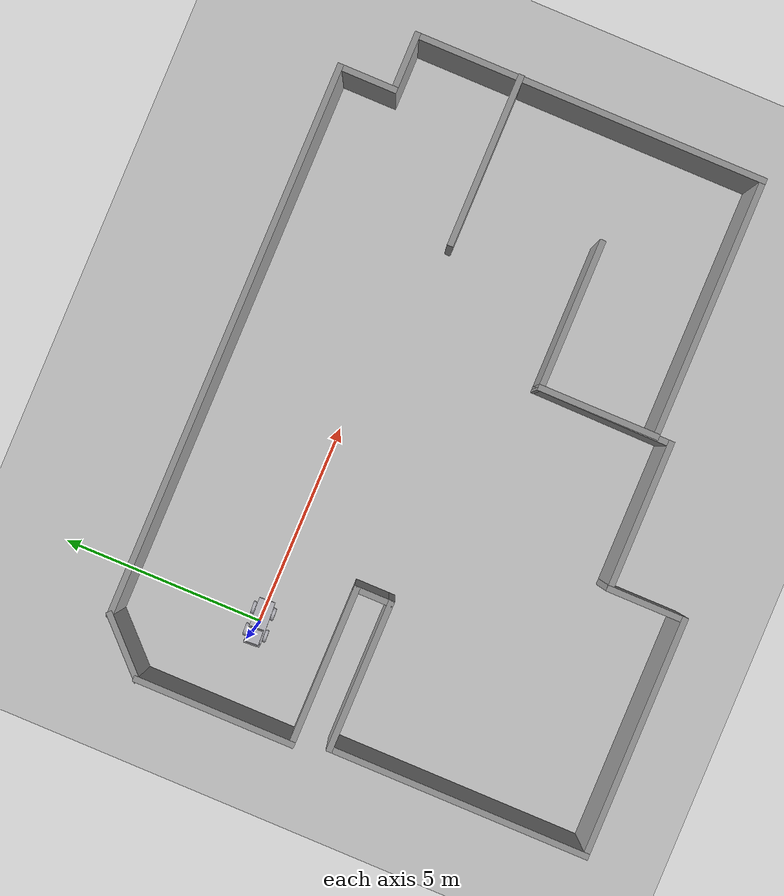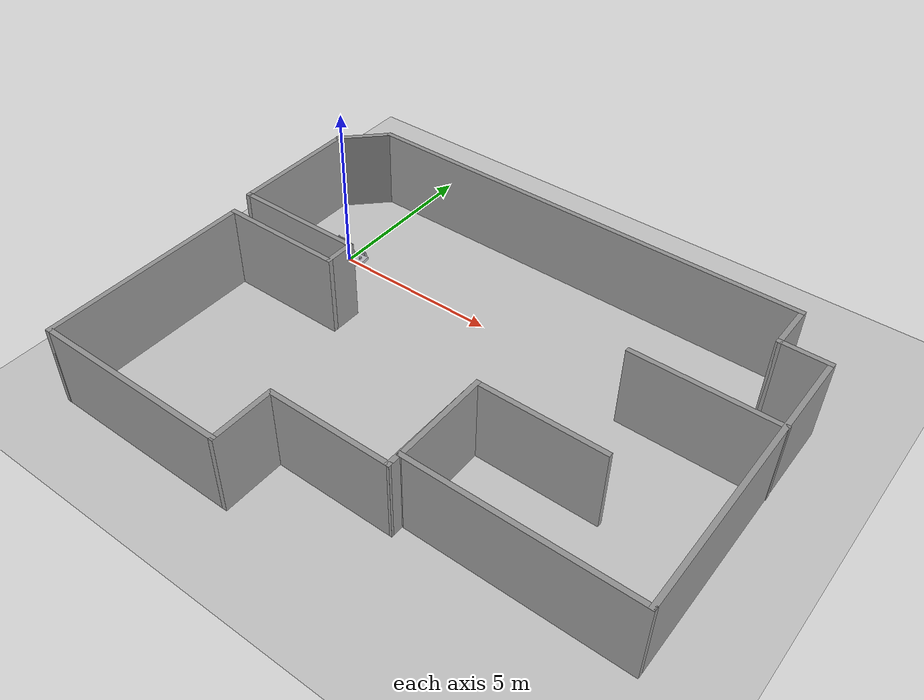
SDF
<sdf version="1.7">
 <world name="default">
  <light name="sun" type="directional">
   <pose>0 0 10 0 -0 0</pose>
   <diffuse>0.8 0.8 0.8 1</diffuse>
   <specular>0.2 0.2 0.2 1</specular>
   <attenuation>
    <range>1000</range>
    <constant>0.9</constant>
    <linear>0.01</linear>
    <quadratic>0.001</quadratic>
   </attenuation>
   <direction>-0.5 0.1 -0.9</direction>
   <spot><inner_angle>0</inner_angle><outer_angle>0</outer_angle><falloff>0</falloff></spot>
  </light>
  <model name="ground_plane">
   <static>1</static>
   <link name="link">
    <collision name="collision">
     <geometry><plane><normal>0 0 1</normal><size>100 100</size></plane></geometry>
     <surface>
      <contact><collide_bitmask>65535</collide_bitmask></contact>
      <friction><ode><mu>100</mu><mu2>50</mu2></ode></friction>
     </surface>
    </collision>
    <visual name="visual">
     <cast_shadows>0</cast_shadows>
     <geometry><plane><normal>0 0 1</normal><size>100 100</size></plane></geometry>
     <material>
      <script><uri>file://media/materials/scripts/gazebo.material</uri><name>Gazebo/Grey</name></script>
     </material>
    </visual>
   </link>
  </model>
  <gravity>0 0 -9.8</gravity>
  <magnetic_field>6e-06 2.3e-05 -4.2e-05</magnetic_field>
  <atmosphere type="adiabatic"/>
  <physics type="ode">
   <max_step_size>0.001</max_step_size>
   <real_time_factor>1</real_time_factor>
   <real_time_update_rate>1000</real_time_update_rate>
  </physics>
  <scene><ambient>0.4 0.4 0.4 1</ambient><background>0.7 0.7 0.7 1</background><shadows>1</shadows></scene>
  <spherical_coordinates>
   <surface_model>EARTH_WGS84</surface_model>
   <latitude_deg>0</latitude_deg>
   <longitude_deg>0</longitude_deg>
   <elevation>0</elevation>
   <heading_deg>0</heading_deg>
  </spherical_coordinates>
  <model name="Sim">
   <link name="base_link">
    <inertial>
     <pose>-0.216834 0.008542 0.267731 0 -0 0</pose>
     <mass>108.314</mass>
     <inertia>
      <ixx>3.47879</ixx>
      <ixy>0.128213</ixy>
      <ixz>1.74582</ixz>
      <iyy>10.7063</iyy>
      <iyz>-0.111075</iyz>
      <izz>10.5024</izz>
     </inertia>
    </inertial>
    <collision name="base_link_collision">
     <geometry>
      <mesh>
       <scale>0.001 0.001 0.001</scale>
       <uri>/home/parallels/Desktop/cyfair_lunabotics/Modules/ROS/catkin_ws/src/rover_sim/meshes/base_link.stl</uri>
      </mesh>
     </geometry>
     <surface><friction><ode><mu>0.2</mu><mu2>0.2</mu2></ode></friction></surface>
    </collision>
    <collision name="base_link_fixed_joint_lump__dump_1_collision_1">
     <geometry>
      <mesh>
       <scale>0.001 0.001 0.001</scale>
       <uri>/home/parallels/Desktop/cyfair_lunabotics/Modules/ROS/catkin_ws/src/rover_sim/meshes/dump_1.stl</uri>
      </mesh>
     </geometry>
     <surface><friction><ode><mu>0.2</mu><mu2>0.2</mu2></ode></friction></surface>
    </collision>
    <collision name="base_link_fixed_joint_lump__lidar_1_collision_2">
     <geometry>
      <mesh>
       <scale>0.001 0.001 0.001</scale>
       <uri>/home/parallels/Desktop/cyfair_lunabotics/Modules/ROS/catkin_ws/src/rover_sim/meshes/lidar_1.stl</uri>
      </mesh>
     </geometry>
     <surface><friction><ode><mu>0.2</mu><mu2>0.2</mu2></ode></friction></surface>
    </collision>
    <visual name="base_link_visual">
     <geometry>
      <mesh>
       <scale>0.001 0.001 0.001</scale>
       <uri>/home/parallels/Desktop/cyfair_lunabotics/Modules/ROS/catkin_ws/src/rover_sim/meshes/base_link.stl</uri>
      </mesh>
     </geometry>
     <material>
      <script><name>Gazebo/Silver</name><uri>file://media/materials/scripts/gazebo.material</uri></script>
     </material>
    </visual>
    <visual name="base_link_fixed_joint_lump__dump_1_visual_1">
     <geometry>
      <mesh>
       <scale>0.001 0.001 0.001</scale>
       <uri>/home/parallels/Desktop/cyfair_lunabotics/Modules/ROS/catkin_ws/src/rover_sim/meshes/dump_1.stl</uri>
      </mesh>
     </geometry>
     <material>
      <script><name>Gazebo/Silver</name><uri>file://media/materials/scripts/gazebo.material</uri></script>
     </material>
    </visual>
    <visual name="base_link_fixed_joint_lump__lidar_1_visual_2">
     <geometry>
      <mesh>
       <scale>0.001 0.001 0.001</scale>
       <uri>/home/parallels/Desktop/cyfair_lunabotics/Modules/ROS/catkin_ws/src/rover_sim/meshes/lidar_1.stl</uri>
      </mesh>
     </geometry>
     <material>
      <script><name>Gazebo/Silver</name><uri>file://media/materials/scripts/gazebo.material</uri></script>
     </material>
    </visual>
    <self_collide>1</self_collide>
    <sensor name="head_hokuyo_sensor" type="ray">
     <visualize>1</visualize>
     <update_rate>40</update_rate>
     <ray>
      <scan>
       <horizontal>
        <samples>720</samples>
        <resolution>1</resolution>
        <min_angle>-1.5708</min_angle>
        <max_angle>6.3</max_angle>
       </horizontal>
       <vertical><samples>1</samples><min_angle>0</min_angle><max_angle>0</max_angle></vertical>
      </scan>
      <range><min>0.1</min><max>10</max><resolution>0.01</resolution></range>
      <noise><type>gaussian</type><mean>0</mean><stddev>0.01</stddev></noise>
     </ray>
     <plugin name="gazebo_ros_head_hokuyo_controller" filename="libgazebo_ros_laser.so">
      <topicName>/scan</topicName>
      <frameName>lidar_1</frameName>
      <robotNamespace>/</robotNamespace>
     </plugin>
     <pose>0.4 0 0.24115 0 -0 0</pose>
    </sensor>
   </link>
   <joint name="Rev13" type="revolute">
    <pose relative_to="base_link">-0.275 0.21 0.1524 0 -0 0</pose>
    <parent>base_link</parent>
    <child>wheel3_1</child>
    <axis>
     <xyz>0 1 0</xyz>
     <limit><lower>-1e+16</lower><upper>1e+16</upper></limit>
     <dynamics><spring_reference>0</spring_reference><spring_stiffness>0</spring_stiffness></dynamics>
    </axis>
   </joint>
   <link name="wheel3_1">
    <pose relative_to="Rev13">0 0 0 0 -0 0</pose>
    <inertial>
     <pose>0 0.0381 0 0 -0 0</pose>
     <mass>5.1708</mass>
     <inertia>
      <ixx>0.032526</ixx>
      <ixy>0</ixy>
      <ixz>0</ixz>
      <iyy>0.060048</iyy>
      <iyz>0</iyz>
      <izz>0.032526</izz>
     </inertia>
    </inertial>
    <collision name="wheel3_1_collision">
     <pose>0.275 -0.21 -0.1524 0 -0 0</pose>
     <geometry>
      <mesh>
       <scale>0.001 0.001 0.001</scale>
       <uri>/home/parallels/Desktop/cyfair_lunabotics/Modules/ROS/catkin_ws/src/rover_sim/meshes/wheel3_1.stl</uri>
      </mesh>
     </geometry>
     <surface><friction><ode><mu>0.2</mu><mu2>0.2</mu2></ode></friction></surface>
    </collision>
    <visual name="wheel3_1_visual">
     <pose>0.275 -0.21 -0.1524 0 -0 0</pose>
     <geometry>
      <mesh>
       <scale>0.001 0.001 0.001</scale>
       <uri>/home/parallels/Desktop/cyfair_lunabotics/Modules/ROS/catkin_ws/src/rover_sim/meshes/wheel3_1.stl</uri>
      </mesh>
     </geometry>
     <material>
      <script><name>Gazebo/Silver</name><uri>file://media/materials/scripts/gazebo.material</uri></script>
     </material>
    </visual>
    <self_collide>1</self_collide>
   </link>
   <joint name="Rev14" type="revolute">
    <pose relative_to="base_link">0.275 0.21 0.1524 0 -0 0</pose>
    <parent>base_link</parent>
    <child>wheel2_1</child>
    <axis>
     <xyz>0 1 0</xyz>
     <limit><lower>-1e+16</lower><upper>1e+16</upper></limit>
     <dynamics><spring_reference>0</spring_reference><spring_stiffness>0</spring_stiffness></dynamics>
    </axis>
   </joint>
   <link name="wheel2_1">
    <pose relative_to="Rev14">0 0 0 0 -0 0</pose>
    <inertial>
     <pose>0 0.0381 0 0 -0 0</pose>
     <mass>5.1708</mass>
     <inertia>
      <ixx>0.032526</ixx>
      <ixy>0</ixy>
      <ixz>0</ixz>
      <iyy>0.060048</iyy>
      <iyz>0</iyz>
      <izz>0.032526</izz>
     </inertia>
    </inertial>
    <collision name="wheel2_1_collision">
     <pose>-0.275 -0.21 -0.1524 0 -0 0</pose>
     <geometry>
      <mesh>
       <scale>0.001 0.001 0.001</scale>
       <uri>/home/parallels/Desktop/cyfair_lunabotics/Modules/ROS/catkin_ws/src/rover_sim/meshes/wheel2_1.stl</uri>
      </mesh>
     </geometry>
     <surface><friction><ode><mu>0.2</mu><mu2>0.2</mu2></ode></friction></surface>
    </collision>
    <visual name="wheel2_1_visual">
     <pose>-0.275 -0.21 -0.1524 0 -0 0</pose>
     <geometry>
      <mesh>
       <scale>0.001 0.001 0.001</scale>
       <uri>/home/parallels/Desktop/cyfair_lunabotics/Modules/ROS/catkin_ws/src/rover_sim/meshes/wheel2_1.stl</uri>
      </mesh>
     </geometry>
     <material>
      <script><name>Gazebo/Silver</name><uri>file://media/materials/scripts/gazebo.material</uri></script>
     </material>
    </visual>
    <self_collide>1</self_collide>
   </link>
   <joint name="Rev15" type="revolute">
    <pose relative_to="base_link">0.275 -0.21 0.1524 0 -0 0</pose>
    <parent>base_link</parent>
    <child>wheel1_1</child>
    <axis>
     <xyz>0 -1 0</xyz>
     <limit><lower>-1e+16</lower><upper>1e+16</upper></limit>
     <dynamics><spring_reference>0</spring_reference><spring_stiffness>0</spring_stiffness></dynamics>
    </axis>
   </joint>
   <link name="wheel1_1">
    <pose relative_to="Rev15">0 0 0 0 -0 0</pose>
    <inertial>
     <pose>-0 -0.0381 0 0 -0 0</pose>
     <mass>5.1708</mass>
     <inertia>
      <ixx>0.032526</ixx>
      <ixy>0</ixy>
      <ixz>0</ixz>
      <iyy>0.060048</iyy>
      <iyz>0</iyz>
      <izz>0.032526</izz>
     </inertia>
    </inertial>
    <collision name="wheel1_1_collision">
     <pose>-0.275 0.21 -0.1524 0 -0 0</pose>
     <geometry>
      <mesh>
       <scale>0.001 0.001 0.001</scale>
       <uri>/home/parallels/Desktop/cyfair_lunabotics/Modules/ROS/catkin_ws/src/rover_sim/meshes/wheel1_1.stl</uri>
      </mesh>
     </geometry>
     <surface><friction><ode><mu>0.2</mu><mu2>0.2</mu2></ode></friction></surface>
    </collision>
    <visual name="wheel1_1_visual">
     <pose>-0.275 0.21 -0.1524 0 -0 0</pose>
     <geometry>
      <mesh>
       <scale>0.001 0.001 0.001</scale>
       <uri>/home/parallels/Desktop/cyfair_lunabotics/Modules/ROS/catkin_ws/src/rover_sim/meshes/wheel1_1.stl</uri>
      </mesh>
     </geometry>
     <material>
      <script><name>Gazebo/Silver</name><uri>file://media/materials/scripts/gazebo.material</uri></script>
     </material>
    </visual>
    <self_collide>1</self_collide>
   </link>
   <joint name="Rev16" type="revolute">
    <pose relative_to="base_link">-0.275 -0.21 0.1524 0 -0 0</pose>
    <parent>base_link</parent>
    <child>wheel4_1</child>
    <axis>
     <xyz>0 1 0</xyz>
     <limit><lower>-1e+16</lower><upper>1e+16</upper></limit>
     <dynamics><spring_reference>0</spring_reference><spring_stiffness>0</spring_stiffness></dynamics>
    </axis>
   </joint>
   <link name="wheel4_1">
    <pose relative_to="Rev16">0 0 0 0 -0 0</pose>
    <inertial>
     <pose>-0 -0.0381 0 0 -0 0</pose>
     <mass>5.1708</mass>
     <inertia>
      <ixx>0.032526</ixx>
      <ixy>0</ixy>
      <ixz>0</ixz>
      <iyy>0.060048</iyy>
      <iyz>0</iyz>
      <izz>0.032526</izz>
     </inertia>
    </inertial>
    <collision name="wheel4_1_collision">
     <pose>0.275 0.21 -0.1524 0 -0 0</pose>
     <geometry>
      <mesh>
       <scale>0.001 0.001 0.001</scale>
       <uri>/home/parallels/Desktop/cyfair_lunabotics/Modules/ROS/catkin_ws/src/rover_sim/meshes/wheel4_1.stl</uri>
      </mesh>
     </geometry>
     <surface><friction><ode><mu>0.2</mu><mu2>0.2</mu2></ode></friction></surface>
    </collision>
    <visual name="wheel4_1_visual">
     <pose>0.275 0.21 -0.1524 0 -0 0</pose>
     <geometry>
      <mesh>
       <scale>0.001 0.001 0.001</scale>
       <uri>/home/parallels/Desktop/cyfair_lunabotics/Modules/ROS/catkin_ws/src/rover_sim/meshes/wheel4_1.stl</uri>
      </mesh>
     </geometry>
     <material>
      <script><name>Gazebo/Silver</name><uri>file://media/materials/scripts/gazebo.material</uri></script>
     </material>
    </visual>
    <self_collide>1</self_collide>
   </link>
   <plugin name="control" filename="libgazebo_ros_control.so"><robotNamespace>/</robotNamespace></plugin>
   <static>0</static>
   <plugin name="skid_steer_drive" filename="libgazebo_ros_skid_steer_drive.so">
    <updateRate>500</updateRate>
    <leftFrontJoint>Rev14</leftFrontJoint>
    <rightFrontJoint>Rev15</rightFrontJoint>
    <leftRearJoint>Rev13</leftRearJoint>
    <rightRearJoint>Rev16</rightRearJoint>
    <wheelSeparation>1.25</wheelSeparation>
    <wheelDiameter>0.3</wheelDiameter>
    <torque>20</torque>
    <commandTopic>cmd_vel</commandTopic>
    <odometryTopic>odom_demo</odometryTopic>
    <odometryFrame>odom_demo</odometryFrame>
    <broadcastTF>1</broadcastTF>
    <robotNamespace>/</robotNamespace>
   </plugin>
   <pose>0.00407 -0.005472 -5.3e-05 -6.7e-05 0.000118 0.053942</pose>
  </model>
  <model name="TestWorld">
   <pose>5.94302 -2.90878 0 0 -0 0</pose>
   <link name="Wall_0">
    <collision name="Wall_0_Collision">
     <geometry><box><size>4 0.15 2.5</size></box></geometry>
     <pose>0 0 1.25 0 -0 0</pose>
    </collision>
    <visual name="Wall_0_Visual">
     <pose>0 0 1.25 0 -0 0</pose>
     <geometry><box><size>4 0.15 2.5</size></box></geometry>
     <material>
      <script><uri>file://media/materials/scripts/gazebo.material</uri><name>Gazebo/Grey</name></script>
      <ambient>1 1 1 1</ambient>
     </material>
     <meta><layer>0</layer></meta>
    </visual>
    <pose>-8.03302 3.01878 0 0 -0 -1.5708</pose>
   </link>
   <link name="Wall_10">
    <collision name="Wall_10_Collision">
     <geometry><box><size>3 0.15 2.5</size></box></geometry>
     <pose>0 0 1.25 0 -0 0</pose>
    </collision>
    <visual name="Wall_10_Visual">
     <pose>0 0 1.25 0 -0 0</pose>
     <geometry><box><size>3 0.15 2.5</size></box></geometry>
     <material>
      <script><uri>file://media/materials/scripts/gazebo.material</uri><name>Gazebo/Grey</name></script>
      <ambient>1 1 1 1</ambient>
     </material>
     <meta><layer>0</layer></meta>
    </visual>
    <pose>1.69835 -2.44985 0 0 -0 1.5708</pose>
   </link>
   <link name="Wall_11">
    <collision name="Wall_11_Collision">
     <geometry><box><size>3.75 0.15 2.5</size></box></geometry>
     <pose>0 0 1.25 0 -0 0</pose>
    </collision>
    <visual name="Wall_11_Visual">
     <pose>0 0 1.25 0 -0 0</pose>
     <geometry><box><size>3.75 0.15 2.5</size></box></geometry>
     <material>
      <script><uri>file://media/materials/scripts/gazebo.material</uri><name>Gazebo/Grey</name></script>
      <ambient>1 1 1 1</ambient>
     </material>
     <meta><layer>0</layer></meta>
    </visual>
    <pose>3.49835 -1.02485 0 0 -0 0</pose>
   </link>
   <link name="Wall_13">
    <collision name="Wall_13_Collision">
     <geometry><box><size>4.25 0.15 2.5</size></box></geometry>
     <pose>0 0 1.25 0 -0 0</pose>
    </collision>
    <visual name="Wall_13_Visual">
     <pose>0 0 1.25 0 -0 0</pose>
     <geometry><box><size>4.25 0.15 2.5</size></box></geometry>
     <material>
      <script><uri>file://media/materials/scripts/gazebo.material</uri><name>Gazebo/Grey</name></script>
      <ambient>1 1 1 1</ambient>
     </material>
     <meta><layer>0</layer></meta>
    </visual>
    <pose>6.01409 2.16194 0 0 -0 3.14159</pose>
   </link>
   <link name="Wall_15">
    <collision name="Wall_15_Collision">
     <geometry><box><size>4 0.15 2.5</size></box></geometry>
     <pose>0 0 1.25 0 -0 0</pose>
    </collision>
    <visual name="Wall_15_Visual">
     <pose>0 0 1.25 0 -0 0</pose>
     <geometry><box><size>4 0.15 2.5</size></box></geometry>
     <material>
      <script><uri>file://media/materials/scripts/gazebo.material</uri><name>Gazebo/Grey</name></script>
      <ambient>1 1 1 1</ambient>
     </material>
     <meta><layer>0</layer></meta>
    </visual>
    <pose>-6.10802 1.09378 0 0 -0 0</pose>
   </link>
   <link name="Wall_16">
    <collision name="Wall_16_Collision">
     <geometry><box><size>1 0.15 2.5</size></box></geometry>
     <pose>0 0 1.25 0 -0 0</pose>
    </collision>
    <visual name="Wall_16_Visual">
     <pose>0 0 1.25 0 -0 0</pose>
     <geometry><box><size>1 0.15 2.5</size></box></geometry>
     <material>
      <script><uri>file://media/materials/scripts/gazebo.material</uri><name>Gazebo/Grey</name></script>
      <ambient>1 1 1 1</ambient>
     </material>
     <meta><layer>0</layer></meta>
    </visual>
    <pose>-4.18302 0.668782 0 0 -0 -1.5708</pose>
   </link>
   <link name="Wall_17">
    <collision name="Wall_17_Collision">
     <geometry><box><size>3.75 0.15 2.5</size></box></geometry>
     <pose>0 0 1.25 0 -0 0</pose>
    </collision>
    <visual name="Wall_17_Visual">
     <pose>0 0 1.25 0 -0 0</pose>
     <geometry><box><size>3.75 0.15 2.5</size></box></geometry>
     <material>
      <script><uri>file://media/materials/scripts/gazebo.material</uri><name>Gazebo/Grey</name></script>
      <ambient>1 1 1 1</ambient>
     </material>
     <meta><layer>0</layer></meta>
    </visual>
    <pose>-5.98302 0.243782 0 0 -0 3.14159</pose>
   </link>
   <link name="Wall_18">
    <collision name="Wall_18_Collision">
     <geometry><box><size>6.5 0.15 2.5</size></box></geometry>
     <pose>0 0 1.25 0 -0 0</pose>
    </collision>
    <visual name="Wall_18_Visual">
     <pose>0 0 1.25 0 -0 0</pose>
     <geometry><box><size>6.5 0.15 2.5</size></box></geometry>
     <material>
      <script><uri>file://media/materials/scripts/gazebo.material</uri><name>Gazebo/Grey</name></script>
      <ambient>1 1 1 1</ambient>
     </material>
     <meta><layer>0</layer></meta>
    </visual>
    <pose>-7.78302 -2.93122 0 0 -0 -1.5708</pose>
   </link>
   <link name="Wall_19">
    <collision name="Wall_19_Collision">
     <geometry><box><size>6 0.15 2.5</size></box></geometry>
     <pose>0 0 1.25 0 -0 0</pose>
    </collision>
    <visual name="Wall_19_Visual">
     <pose>0 0 1.25 0 -0 0</pose>
     <geometry><box><size>6 0.15 2.5</size></box></geometry>
     <material>
      <script><uri>file://media/materials/scripts/gazebo.material</uri><name>Gazebo/Grey</name></script>
      <ambient>1 1 1 1</ambient>
     </material>
     <meta><layer>0</layer></meta>
    </visual>
    <pose>-4.85802 -6.10622 0 0 -0 0</pose>
   </link>
   <link name="Wall_2">
    <collision name="Wall_2_Collision">
     <geometry><box><size>1.75 0.15 2.5</size></box></geometry>
     <pose>0 0 1.25 0 -0 0</pose>
    </collision>
    <visual name="Wall_2_Visual">
     <pose>0 0 1.25 0 -0 0</pose>
     <geometry><box><size>1.75 0.15 2.5</size></box></geometry>
     <material>
      <script><uri>file://media/materials/scripts/gazebo.material</uri><name>Gazebo/Grey</name></script>
      <ambient>1 1 1 1</ambient>
     </material>
     <meta><layer>0</layer></meta>
    </visual>
    <pose>-7.46734 5.50947 0 0 -0 0.785398</pose>
   </link>
   <link name="Wall_20">
    <collision name="Wall_20_Collision">
     <geometry><box><size>2 0.15 2.5</size></box></geometry>
     <pose>0 0 1.25 0 -0 0</pose>
    </collision>
    <visual name="Wall_20_Visual">
     <pose>0 0 1.25 0 -0 0</pose>
     <geometry><box><size>2 0.15 2.5</size></box></geometry>
     <material>
      <script><uri>file://media/materials/scripts/gazebo.material</uri><name>Gazebo/Grey</name></script>
      <ambient>1 1 1 1</ambient>
     </material>
     <meta><layer>0</layer></meta>
    </visual>
    <pose>-1.93302 -5.18122 0 0 -0 1.5708</pose>
   </link>
   <link name="Wall_21">
    <collision name="Wall_21_Collision">
     <geometry><box><size>3.75 0.15 2.5</size></box></geometry>
     <pose>0 0 1.25 0 -0 0</pose>
    </collision>
    <visual name="Wall_21_Visual">
     <pose>0 0 1.25 0 -0 0</pose>
     <geometry><box><size>3.75 0.15 2.5</size></box></geometry>
     <material>
      <script><uri>file://media/materials/scripts/gazebo.material</uri><name>Gazebo/Grey</name></script>
      <ambient>1 1 1 1</ambient>
     </material>
     <meta><layer>0</layer></meta>
    </visual>
    <pose>-0.133024 -4.25622 0 0 -0 0</pose>
   </link>
   <link name="Wall_22">
    <collision name="Wall_22_Collision">
     <geometry><box><size>3.38152 0.15 2.5</size></box></geometry>
     <pose>0 0 1.25 0 -0 0</pose>
    </collision>
    <visual name="Wall_22_Visual">
     <pose>0 0 1.25 0 -0 0</pose>
     <geometry><box><size>3.38152 0.15 2.5</size></box></geometry>
     <material>
      <script><uri>file://media/materials/scripts/gazebo.material</uri><name>Gazebo/Grey</name></script>
      <ambient>1 1 1 1</ambient>
     </material>
     <meta><layer>0</layer></meta>
    </visual>
    <pose>1.68266 -2.64053 0 0 -0 1.56109</pose>
   </link>
   <link name="Wall_4">
    <collision name="Wall_4_Collision">
     <geometry><box><size>13.75 0.15 2.5</size></box></geometry>
     <pose>0 0 1.25 0 -0 0</pose>
    </collision>
    <visual name="Wall_4_Visual">
     <pose>0 0 1.25 0 -0 0</pose>
     <geometry><box><size>13.75 0.15 2.5</size></box></geometry>
     <material>
      <script><uri>file://media/materials/scripts/gazebo.material</uri><name>Gazebo/Grey</name></script>
      <ambient>1 1 1 1</ambient>
     </material>
     <meta><layer>0</layer></meta>
    </visual>
    <pose>-0.101653 6.07515 0 0 -0 0</pose>
   </link>
   <link name="Wall_6">
    <collision name="Wall_6_Collision">
     <geometry><box><size>1.5 0.15 2.5</size></box></geometry>
     <pose>0 0 1.25 0 -0 0</pose>
    </collision>
    <visual name="Wall_6_Visual">
     <pose>0 0 1.25 0 -0 0</pose>
     <geometry><box><size>1.5 0.15 2.5</size></box></geometry>
     <material>
      <script><uri>file://media/materials/scripts/gazebo.material</uri><name>Gazebo/Grey</name></script>
      <ambient>1 1 1 1</ambient>
     </material>
     <meta><layer>0</layer></meta>
    </visual>
    <pose>6.69835 5.40015 0 0 -0 -1.5708</pose>
   </link>
   <link name="Wall_7">
    <collision name="Wall_7_Collision">
     <geometry><box><size>1.5 0.15 2.5</size></box></geometry>
     <pose>0 0 1.25 0 -0 0</pose>
    </collision>
    <visual name="Wall_7_Visual">
     <pose>0 0 1.25 0 -0 0</pose>
     <geometry><box><size>1.5 0.15 2.5</size></box></geometry>
     <material>
      <script><uri>file://media/materials/scripts/gazebo.material</uri><name>Gazebo/Grey</name></script>
      <ambient>1 1 1 1</ambient>
     </material>
     <meta><layer>0</layer></meta>
    </visual>
    <pose>7.37335 4.72515 0 0 -0 0</pose>
   </link>
   <link name="Wall_8">
    <collision name="Wall_8_Collision">
     <geometry><box><size>8.75 0.15 2.5</size></box></geometry>
     <pose>0 0 1.25 0 -0 0</pose>
    </collision>
    <visual name="Wall_8_Visual">
     <pose>0 0 1.25 0 -0 0</pose>
     <geometry><box><size>8.75 0.15 2.5</size></box></geometry>
     <material>
      <script><uri>file://media/materials/scripts/gazebo.material</uri><name>Gazebo/Grey</name></script>
      <ambient>1 1 1 1</ambient>
     </material>
     <meta><layer>0</layer></meta>
    </visual>
    <pose>8.04835 0.425152 0 0 -0 -1.5708</pose>
   </link>
   <link name="Wall_9">
    <collision name="Wall_9_Collision">
     <geometry><box><size>6.5 0.15 2.5</size></box></geometry>
     <pose>0 0 1.25 0 -0 0</pose>
    </collision>
    <visual name="Wall_9_Visual">
     <pose>0 0 1.25 0 -0 0</pose>
     <geometry><box><size>6.5 0.15 2.5</size></box></geometry>
     <material>
      <script><uri>file://media/materials/scripts/gazebo.material</uri><name>Gazebo/Grey</name></script>
      <ambient>1 1 1 1</ambient>
     </material>
     <meta><layer>0</layer></meta>
    </visual>
    <pose>4.87335 -3.87485 0 0 -0 3.14159</pose>
   </link>
   <static>1</static>
  </model>
 </world>
</sdf>
